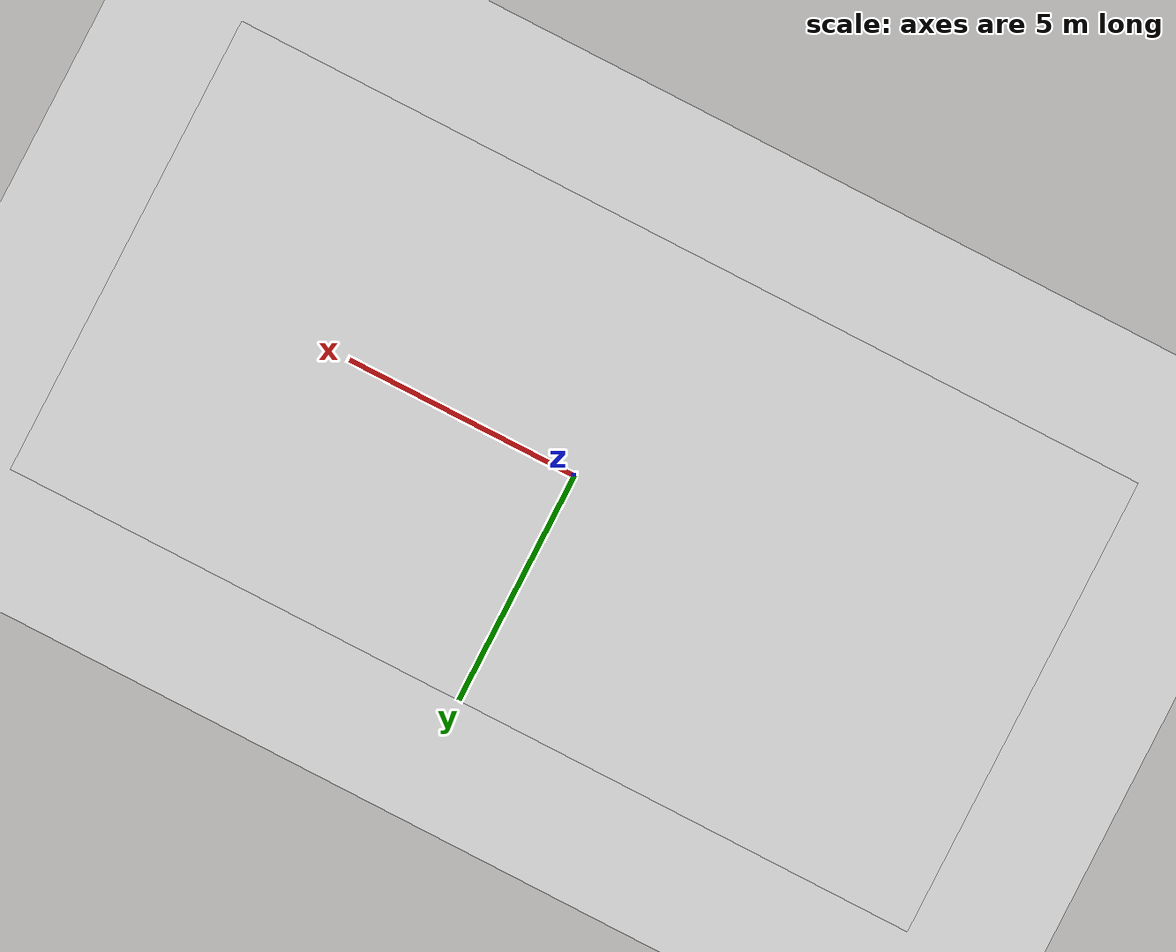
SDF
<?xml version="1.0"?>
<sdf version="1.9">
  <world name="cleaning_environment">
    <gravity>0 0 -9.81</gravity>
    <physics name="1ms" type="ode"><max_step_size>0.001</max_step_size><real_time_factor>1</real_time_factor></physics>
    <scene><ambient>0.45 0.45 0.45 1</ambient><background>0.70 0.75 0.80 1</background><shadows>true</shadows></scene>
    <light name="sun" type="directional"><cast_shadows>true</cast_shadows><pose>-6 -4 10 0.3 -0.4 0</pose><diffuse>0.9 0.9 0.85 1</diffuse><specular>0.25 0.25 0.25 1</specular><direction>-0.4 0.3 -1</direction></light>
    <include><uri>model://ground_plane</uri></include>
    <include><uri>model://sun</uri></include>
    <model name="floor"><static>true</static><link name="link"><collision name="collision"><geometry><box><size>20 10 0.1</size></box></geometry></collision><visual name="visual"><geometry><box><size>20 10 0.1</size></box></geometry><material><diffuse>0.8 0.8 0.8 1</diffuse></material></visual></link><pose>0 0 -0.05 0 0 0</pose></model>
  </world>
</sdf>
